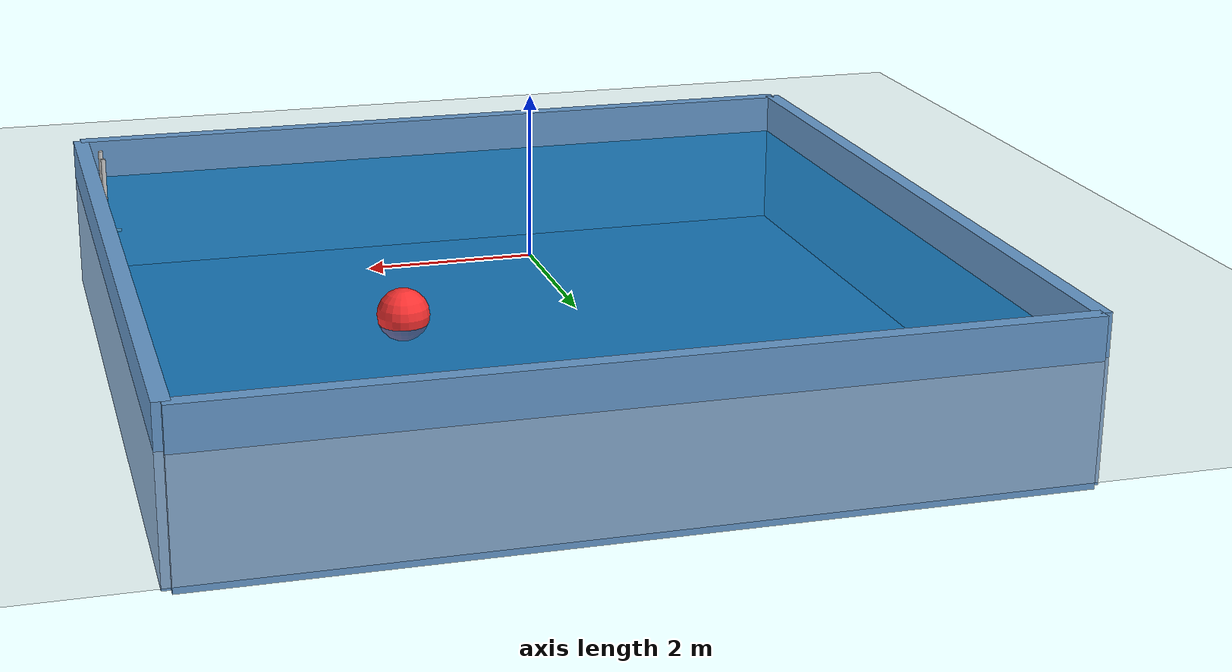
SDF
<?xml version="1.0" ?>
<sdf version="1.8">
  <world name="pool_world">

    <!-- Physics -->
    <physics name="default_physics" type="ode">
      <gravity>0 0 -9.8</gravity>
      <max_step_size>0.001</max_step_size>
      <real_time_factor>1.0</real_time_factor>
    </physics>

    <!-- Plugins necesarios -->
    <plugin
      filename="gz-sim-physics-system"
      name="gz::sim::systems::Physics">
    </plugin>
    <plugin
      filename="gz-sim-user-commands-system"
      name="gz::sim::systems::UserCommands">
    </plugin>
    <plugin
      filename="gz-sim-scene-broadcaster-system"
      name="gz::sim::systems::SceneBroadcaster">
    </plugin>
    <plugin
      filename="gz-sim-contact-system"
      name="gz::sim::systems::Contact">
    </plugin>
    <plugin
      filename="libignition-gazebo-buoyancy-system.so"
      name="ignition::gazebo::systems::Buoyancy">
      <fluid_density>1000.0</fluid_density> <!-- Densidad del agua en kg/m^3 -->
      <volume_visualization>false</volume_visualization>
    </plugin>

    <!-- Luz solar -->
    <light type="directional" name="sun">
      <cast_shadows>true</cast_shadows>
      <pose>0 0 10 0 0 0</pose>
      <diffuse>0.8 0.8 0.8 1</diffuse>
      <specular>0.2 0.2 0.2 1</specular>
      <attenuation>
        <range>1000</range>
        <constant>0.9</constant>
        <linear>0.01</linear>
        <quadratic>0.001</quadratic>
      </attenuation>
      <direction>-0.5 0.1 -0.9</direction>
    </light>

    <!-- Cielo -->
    <scene>
      <ambient>0.4 0.4 0.4 1</ambient>
      <background>0.7 0.8 1 1</background>
      <shadows>true</shadows>
      <sky>
        <clouds>
          <speed>12</speed>
        </clouds>
      </sky>
    </scene>

    <!-- Suelo alrededor de la piscina (concreto) -->
    <model name="ground_plane">
      <static>true</static>
      <link name="link">
        <collision name="collision">
          <geometry>
            <plane>
              <normal>0 0 1</normal>
              <size>50 50</size>
            </plane>
          </geometry>
          <surface>
            <friction>
              <ode>
                <mu>100</mu>
                <mu2>50</mu2>
              </ode>
            </friction>
          </surface>
        </collision>
        <visual name="visual">
          <geometry>
            <plane>
              <normal>0 0 1</normal>
              <size>50 50</size>
            </plane>
          </geometry>
          <material>
            <ambient>0.8 0.8 0.8 1</ambient>
            <diffuse>0.8 0.8 0.8 1</diffuse>
            <specular>0.1 0.1 0.1 1</specular>
          </material>
        </visual>
      </link>
    </model>

    <!-- Paredes de la piscina -->
    <!-- Pared frontal -->
    <model name="pool_wall_front">
      <static>true</static>
      <pose>5 0 -0.5 0 0 0</pose>
      <link name="link">
        <collision name="collision">
          <geometry>
            <box>
              <size>0.2 10 2</size>
            </box>
          </geometry>
        </collision>
        <visual name="visual">
          <geometry>
            <box>
              <size>0.2 10 2</size>
            </box>
          </geometry>
          <material>
            <ambient>0.4 0.6 0.8 1</ambient>
            <diffuse>0.4 0.6 0.8 1</diffuse>
          </material>
        </visual>
      </link>
    </model>

    <!-- Pared trasera -->
    <model name="pool_wall_back">
      <static>true</static>
      <pose>-5 0 -0.5 0 0 0</pose>
      <link name="link">
        <collision name="collision">
          <geometry>
            <box>
              <size>0.2 10 2</size>
            </box>
          </geometry>
        </collision>
        <visual name="visual">
          <geometry>
            <box>
              <size>0.2 10 2</size>
            </box>
          </geometry>
          <material>
            <ambient>0.4 0.6 0.8 1</ambient>
            <diffuse>0.4 0.6 0.8 1</diffuse>
          </material>
        </visual>
      </link>
    </model>

    <!-- Pared izquierda -->
    <model name="pool_wall_left">
      <static>true</static>
      <pose>0 5 -0.5 0 0 0</pose>
      <link name="link">
        <collision name="collision">
          <geometry>
            <box>
              <size>10 0.2 2</size>
            </box>
          </geometry>
        </collision>
        <visual name="visual">
          <geometry>
            <box>
              <size>10 0.2 2</size>
            </box>
          </geometry>
          <material>
            <ambient>0.4 0.6 0.8 1</ambient>
            <diffuse>0.4 0.6 0.8 1</diffuse>
          </material>
        </visual>
      </link>
    </model>

    <!-- Pared derecha -->
    <model name="pool_wall_right">
      <static>true</static>
      <pose>0 -5 -0.5 0 0 0</pose>
      <link name="link">
        <collision name="collision">
          <geometry>
            <box>
              <size>10 0.2 2</size>
            </box>
          </geometry>
        </collision>
        <visual name="visual">
          <geometry>
            <box>
              <size>10 0.2 2</size>
            </box>
          </geometry>
          <material>
            <ambient>0.4 0.6 0.8 1</ambient>
            <diffuse>0.4 0.6 0.8 1</diffuse>
          </material>
        </visual>
      </link>
    </model>

    <!-- Fondo de la piscina -->
    <model name="pool_floor">
      <static>true</static>
      <pose>0 0 -1.4 0 0 0</pose>
      <link name="link">
        <collision name="collision">
          <geometry>
            <box>
              <size>10 10 0.2</size>
            </box>
          </geometry>
        </collision>
        <visual name="visual">
          <geometry>
            <box>
              <size>10 10 0.2</size>
            </box>
          </geometry>
          <material>
            <ambient>0.3 0.5 0.7 1</ambient>
            <diffuse>0.3 0.5 0.7 1</diffuse>
          </material>
        </visual>
      </link>
    </model>

    <!-- Agua de la piscina (visual solamente, sin física real de fluidos) -->
    <model name="water">
      <static>true</static>
      <pose>0 0 -0.7 0 0 0</pose>
      <link name="link">
        <visual name="visual">
          <geometry>
            <box>
              <size>9.8 9.8 1.4</size>
            </box>
          </geometry>
          <material>
            <ambient>0.0 0.5 0.8 0.6</ambient>
            <diffuse>0.0 0.5 0.8 0.6</diffuse>
            <specular>1.0 1.0 1.0 0.6</specular>
          </material>
          <transparency>0.4</transparency>
        </visual>
      </link>
    </model>

    <!-- Escaleras de la piscina -->
    <model name="pool_ladder">
      <static>true</static>
      <pose>4.8 -4 -0.2 0 0 0</pose>
      <link name="link">
        <!-- Barandal izquierdo -->
        <visual name="left_rail">
          <pose>0 -0.2 0 0 0 0</pose>
          <geometry>
            <cylinder>
              <radius>0.03</radius>
              <length>1.5</length>
            </cylinder>
          </geometry>
          <material>
            <ambient>0.8 0.8 0.8 1</ambient>
            <diffuse>0.8 0.8 0.8 1</diffuse>
          </material>
        </visual>
        <!-- Barandal derecho -->
        <visual name="right_rail">
          <pose>0 0.2 0 0 0 0</pose>
          <geometry>
            <cylinder>
              <radius>0.03</radius>
              <length>1.5</length>
            </cylinder>
          </geometry>
          <material>
            <ambient>0.8 0.8 0.8 1</ambient>
            <diffuse>0.8 0.8 0.8 1</diffuse>
          </material>
        </visual>
        <!-- Peldaños -->
        <visual name="step1">
          <pose>0 0 -0.3 0 1.57 0</pose>
          <geometry>
            <cylinder>
              <radius>0.02</radius>
              <length>0.4</length>
            </cylinder>
          </geometry>
          <material>
            <ambient>0.8 0.8 0.8 1</ambient>
            <diffuse>0.8 0.8 0.8 1</diffuse>
          </material>
        </visual>
        <visual name="step2">
          <pose>0 0 -0.6 0 1.57 0</pose>
          <geometry>
            <cylinder>
              <radius>0.02</radius>
              <length>0.4</length>
            </cylinder>
          </geometry>
          <material>
            <ambient>0.8 0.8 0.8 1</ambient>
            <diffuse>0.8 0.8 0.8 1</diffuse>
          </material>
        </visual>
      </link>
    </model>

    <!-- Algunos objetos flotantes decorativos -->
    <model name="beach_ball">
      <pose>2 2 0.1 0 0 0</pose>
      <link name="link">
        <inertial>
          <mass>0.1</mass>
          <inertia>
            <ixx>0.001</ixx>
            <iyy>0.001</iyy>
            <izz>0.001</izz>
          </inertia>
        </inertial>
        <collision name="collision">
          <geometry>
            <sphere>
              <radius>0.3</radius>
            </sphere>
          </geometry>
        </collision>
        <visual name="visual">
          <geometry>
            <sphere>
              <radius>0.3</radius>
            </sphere>
          </geometry>
          <material>
            <ambient>1 0.2 0.2 1</ambient>
            <diffuse>1 0.2 0.2 1</diffuse>
          </material>
        </visual>
      </link>
    </model>

  </world>
</sdf>
